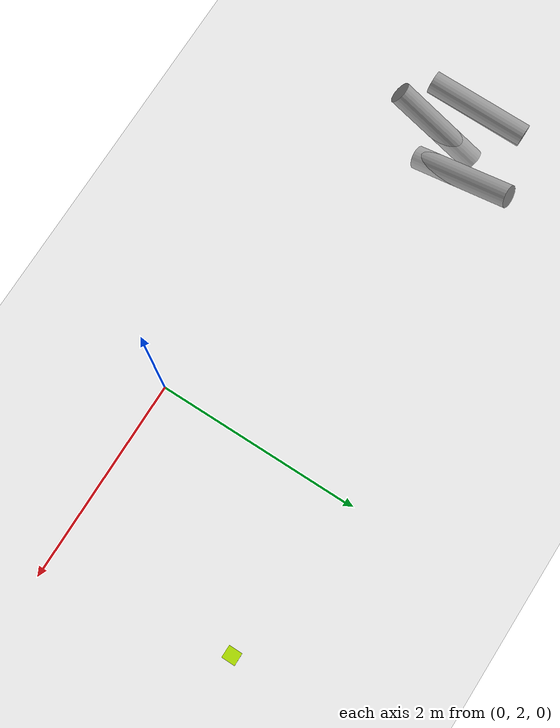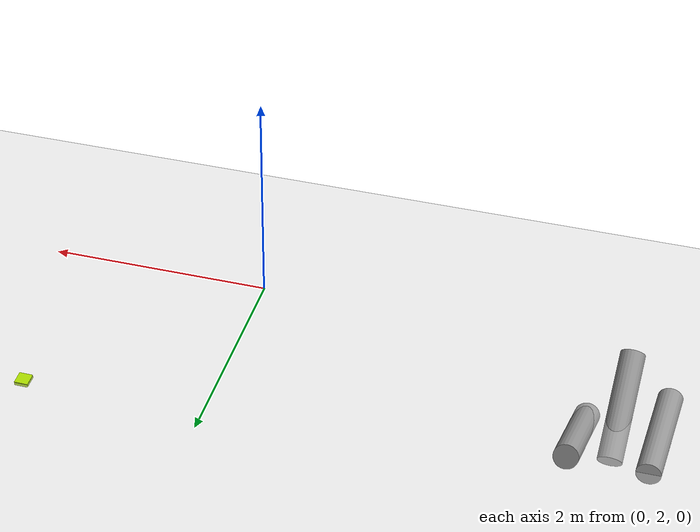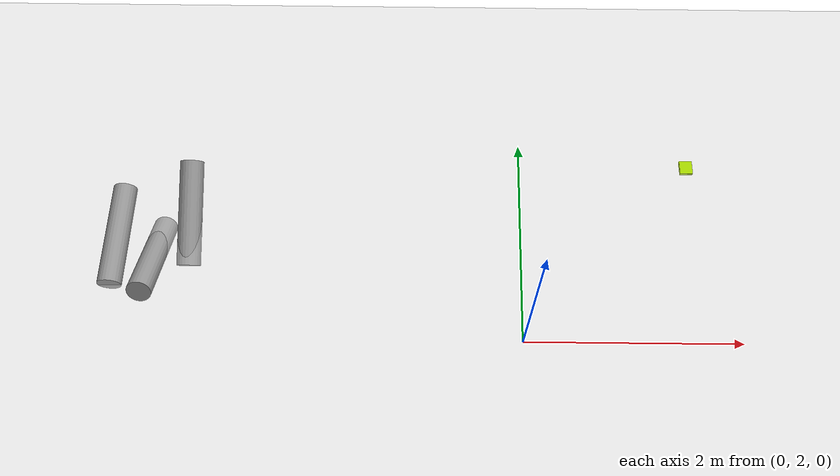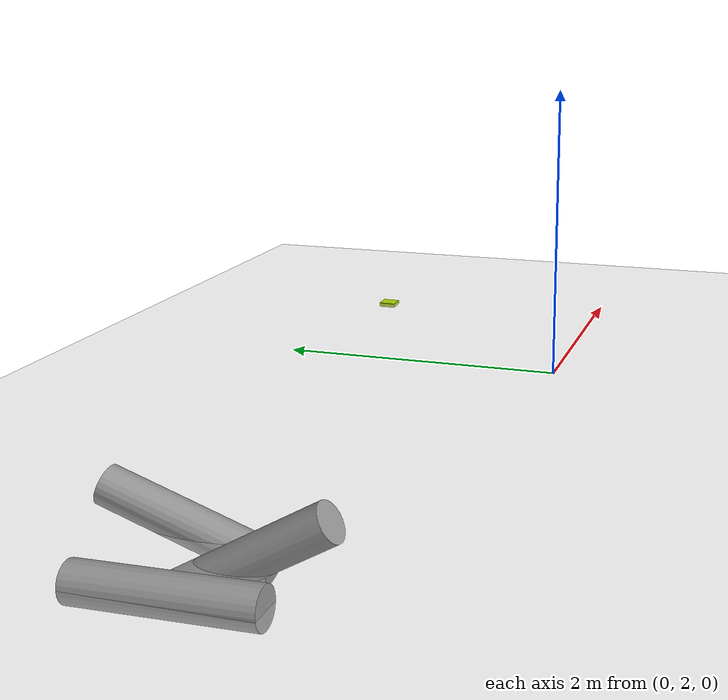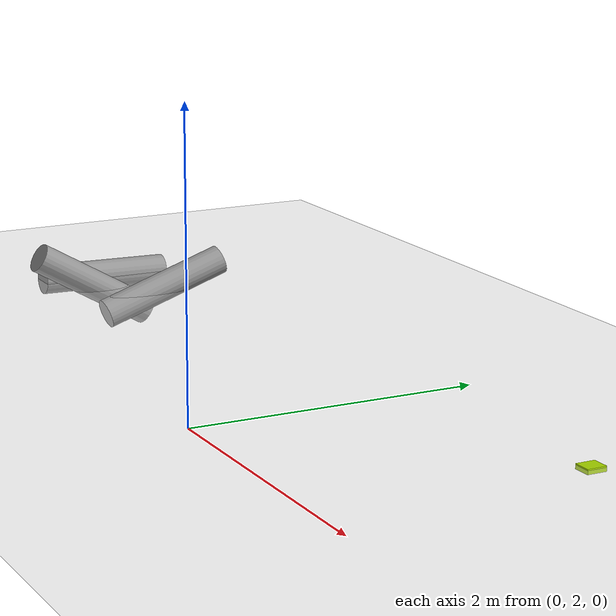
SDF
<sdf version="1.7">
 <world name="default">
  <model name="ground_plane">
   <static>1</static>
   <link name="link">
    <collision name="collision">
     <geometry><plane><normal>0 0 1</normal><size>100 100</size></plane></geometry>
     <surface>
      <contact><collide_bitmask>65535</collide_bitmask></contact>
      <friction><ode><mu>1.0</mu><mu2>1.0</mu2></ode></friction>
     </surface>
    </collision>
    <visual name="visual">
     <cast_shadows>0</cast_shadows>
     <geometry><plane><normal>0 0 1</normal><size>100 100</size></plane></geometry>
     <material>
      <script><uri>file://media/materials/scripts/gazebo.material</uri><name>Gazebo/Grey</name></script>
     </material>
    </visual>
   </link>
  </model>
  <model name="unit_cylinder_clone_clone">
   <link name="link">
    <inertial>
     <mass>0.0497635</mass>
     <inertia>
      <ixx>0.00430173</ixx>
      <ixy>0</ixy>
      <ixz>0</ixz>
      <iyy>0.00430173</iyy>
      <iyz>0</iyz>
      <izz>0.00030955</izz>
     </inertia>
    </inertial>
    <pose>0.001965 -0.009653 -0.499784 1.55252 -0 0</pose>
    <visual name="visual">
     <geometry><cylinder><radius>0.111539</radius><length>1</length></cylinder></geometry>
     <material>
      <script><name>Gazebo/Grey</name><uri>file://media/materials/scripts/gazebo.material</uri></script>
      <shader type="pixel"/>
     </material>
    </visual>
    <collision name="collision">
     <geometry><cylinder><radius>0.111539</radius><length>1</length></cylinder></geometry>
     <surface>
      <friction>
       <ode><mu>1.0</mu><mu2>1.0</mu2><fdir1>0 0 0</fdir1><slip1>0</slip1><slip2>0</slip2></ode>
       <torsional>
        <coefficient>1</coefficient>
        <patch_radius>0</patch_radius>
        <surface_radius>0</surface_radius>
        <use_patch_radius>1</use_patch_radius>
        <ode><slip>0</slip></ode>
       </torsional>
      </friction>
      <bounce><restitution_coefficient>0</restitution_coefficient><threshold>1e+06</threshold></bounce>
      <contact>
       <collide_without_contact>0</collide_without_contact>
       <collide_without_contact_bitmask>1</collide_without_contact_bitmask>
       <collide_bitmask>1</collide_bitmask>
       <ode>
        <soft_cfm>0</soft_cfm>
        <soft_erp>0.2</soft_erp>
        <kp>1e+13</kp>
        <kd>1</kd>
        <max_vel>0.01</max_vel>
        <min_depth>0</min_depth>
       </ode>
       <bullet>
        <split_impulse>1</split_impulse>
        <split_impulse_penetration_threshold>-0.01</split_impulse_penetration_threshold>
        <soft_cfm>0</soft_cfm>
        <soft_erp>0.2</soft_erp>
        <kp>1e+13</kp>
        <kd>1</kd>
       </bullet>
      </contact>
     </surface>
    </collision>
   </link>
   <static>1</static>
   <pose>-3.16214 3.06519 0.5 0.34698 -0 0</pose>
  </model>
  <model name="unit_cylinder_clone_clone_clone">
   <link name="link">
    <inertial>
     <mass>0.0497635</mass>
     <inertia>
      <ixx>0.00430173</ixx>
      <ixy>0</ixy>
      <ixz>0</ixz>
      <iyy>0.00430173</iyy>
      <iyz>0</iyz>
      <izz>0.00030955</izz>
     </inertia>
    </inertial>
    <pose>0.001965 -0.009653 -0.499784 1.55252 -0 0</pose>
    <visual name="visual">
     <geometry><cylinder><radius>0.111539</radius><length>1</length></cylinder></geometry>
     <material>
      <script><name>Gazebo/Grey</name><uri>file://media/materials/scripts/gazebo.material</uri></script>
      <shader type="pixel"/>
     </material>
    </visual>
    <collision name="collision">
     <geometry><cylinder><radius>0.111539</radius><length>1</length></cylinder></geometry>
     <surface>
      <friction>
       <ode><mu>1.0</mu><mu2>1.0</mu2><fdir1>0 0 0</fdir1><slip1>0</slip1><slip2>0</slip2></ode>
       <torsional>
        <coefficient>1</coefficient>
        <patch_radius>0</patch_radius>
        <surface_radius>0</surface_radius>
        <use_patch_radius>1</use_patch_radius>
        <ode><slip>0</slip></ode>
       </torsional>
      </friction>
      <bounce><restitution_coefficient>0</restitution_coefficient><threshold>1e+06</threshold></bounce>
      <contact>
       <collide_without_contact>0</collide_without_contact>
       <collide_without_contact_bitmask>1</collide_without_contact_bitmask>
       <collide_bitmask>1</collide_bitmask>
       <ode>
        <soft_cfm>0</soft_cfm>
        <soft_erp>0.2</soft_erp>
        <kp>1e+13</kp>
        <kd>1</kd>
        <max_vel>0.01</max_vel>
        <min_depth>0</min_depth>
       </ode>
       <bullet>
        <split_impulse>1</split_impulse>
        <split_impulse_penetration_threshold>-0.01</split_impulse_penetration_threshold>
        <soft_cfm>0</soft_cfm>
        <soft_erp>0.2</soft_erp>
        <kp>1e+13</kp>
        <kd>1</kd>
       </bullet>
      </contact>
     </surface>
    </collision>
   </link>
   <static>1</static>
   <pose>-3.45585 3.01997 0.46206 -0.51125 0 0</pose>
  </model>
  <model name="unit_cylinder_clone_1">
   <link name="link">
    <inertial>
     <mass>0.0497635</mass>
     <inertia>
      <ixx>0.00430173</ixx>
      <ixy>0</ixy>
      <ixz>0</ixz>
      <iyy>0.00430173</iyy>
      <iyz>0</iyz>
      <izz>0.00030955</izz>
     </inertia>
    </inertial>
    <pose>0.001965 -0.009653 -0.499784 1.55252 -0 0</pose>
    <visual name="visual">
     <geometry><cylinder><radius>0.111539</radius><length>1</length></cylinder></geometry>
     <material>
      <script><name>Gazebo/Grey</name><uri>file://media/materials/scripts/gazebo.material</uri></script>
      <shader type="pixel"/>
     </material>
    </visual>
    <collision name="collision">
     <geometry><cylinder><radius>0.111539</radius><length>1</length></cylinder></geometry>
     <surface>
      <friction>
       <ode><mu>1.0</mu><mu2>1.0</mu2><fdir1>0 0 0</fdir1><slip1>0</slip1><slip2>0</slip2></ode>
       <torsional>
        <coefficient>1</coefficient>
        <patch_radius>0</patch_radius>
        <surface_radius>0</surface_radius>
        <use_patch_radius>1</use_patch_radius>
        <ode><slip>0</slip></ode>
       </torsional>
      </friction>
      <bounce><restitution_coefficient>0</restitution_coefficient><threshold>1e+06</threshold></bounce>
      <contact>
       <collide_without_contact>0</collide_without_contact>
       <collide_without_contact_bitmask>1</collide_without_contact_bitmask>
       <collide_bitmask>1</collide_bitmask>
       <ode>
        <soft_cfm>0</soft_cfm>
        <soft_erp>0.2</soft_erp>
        <kp>1e+13</kp>
        <kd>1</kd>
        <max_vel>0.01</max_vel>
        <min_depth>0</min_depth>
       </ode>
       <bullet>
        <split_impulse>1</split_impulse>
        <split_impulse_penetration_threshold>-0.01</split_impulse_penetration_threshold>
        <soft_cfm>0</soft_cfm>
        <soft_erp>0.2</soft_erp>
        <kp>1e+13</kp>
        <kd>1</kd>
       </bullet>
      </contact>
     </surface>
    </collision>
   </link>
   <static>1</static>
   <pose>-3.83638 3.01167 0.5 0 -0 0</pose>
  </model>
  <model name="wp7">
   <static>1</static>
   <pose>1.64538 3.79553 -0.015307 0 -0.017033 0</pose>
   <link name="link">
    <collision name="collision">
     <geometry><box><size>0.122968 0.133706 0.033476</size></box></geometry>
    </collision>
    <visual name="visual">
     <geometry><box><size>0.122968 0.133706 0.033476</size></box></geometry>
     <material>
      <ambient>0.5 0.75 0 1</ambient>
      <diffuse>0.7 0.9 0 1</diffuse>
      <specular>0.2 0.2 0.2 64</specular>
      <emissive>0.1 0 0.1 1</emissive>
     </material>
    </visual>
   </link>
  </model>
 </world>
</sdf>
